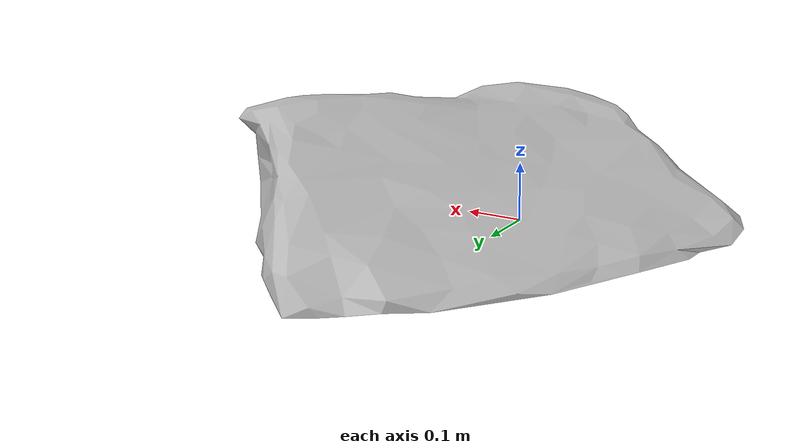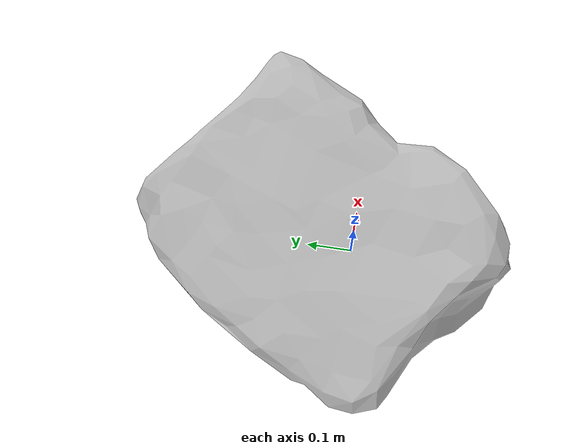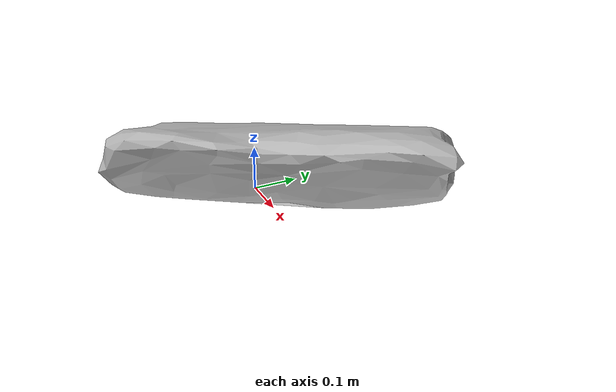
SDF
<?xml version="1.0" ?>
<sdf version="1.4">
    <model name="stone6">
      <pose>0 0 0 0 0 0</pose>
        <static>false</static>
	  <link name="stone6_link">
	    <collision name="stone6_collision">
	      <geometry>
                <mesh>
		  <uri>model://stone6/meshes/Intresto_rock_for_landscape_03.dae</uri>
                    <scale>2 2 1</scale>
		</mesh>
	      </geometry>
	    </collision>

	    <visual name="stone6_visual">
	      <geometry>
            	<mesh>
		  <uri>model://stone6/meshes/Intresto_rock_for_landscape_03.dae</uri>
                  <scale>2 2 1</scale>
		</mesh>
	      </geometry>
	    </visual>

    </link>
  </model>
</sdf>
